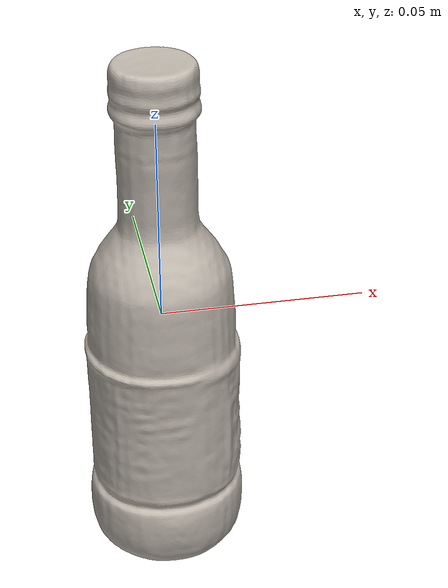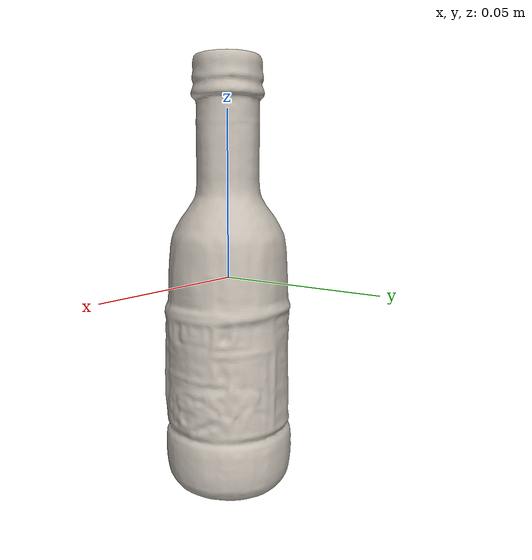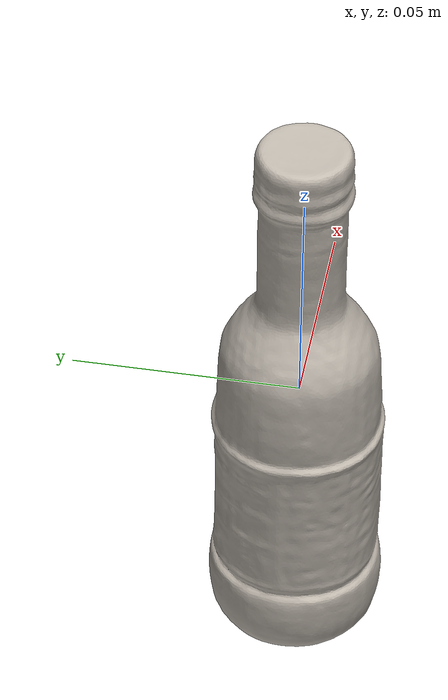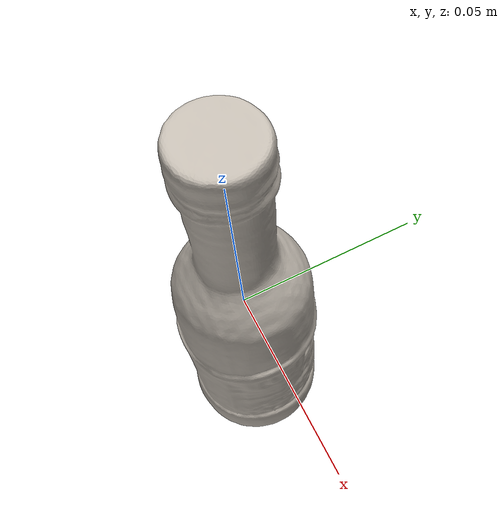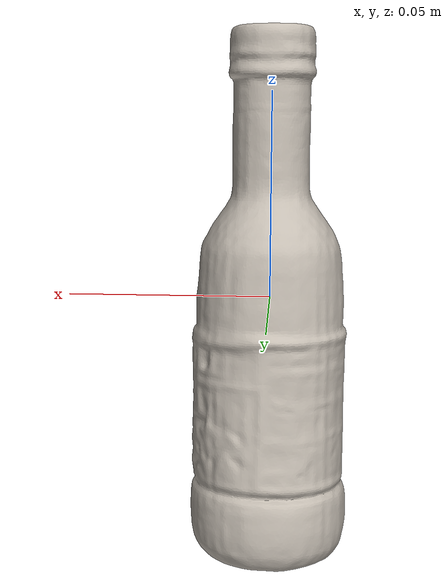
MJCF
<?xml version='1.0' encoding='utf-8'?>
<mujoco model="olive_oil_bottle_0">
  <asset>
    <texture file="ceramic.png" name="tex-olive_oil_bottle_0" type="2d" />
    <material name="olive_oil_bottle_0" reflectance="0.5" texrepeat="1 1" texture="tex-olive_oil_bottle_0" texuniform="false" />
    <mesh file="visual/model_normalized_0.obj" name="model_normalized_0_vis" scale="0.13 0.13 0.13" refquat="1.0 0.0 0.0 0.0" />
    <mesh file="collision/model_normalized_collision_13.obj" name="model_normalized_collision_13._coll" scale="0.13 0.13 0.13" refquat="1.0 0.0 0.0 0.0" />
    <mesh file="collision/model_normalized_collision_15.obj" name="model_normalized_collision_15._coll" scale="0.13 0.13 0.13" refquat="1.0 0.0 0.0 0.0" />
    <mesh file="collision/model_normalized_collision_10.obj" name="model_normalized_collision_10._coll" scale="0.13 0.13 0.13" refquat="1.0 0.0 0.0 0.0" />
    <mesh file="collision/model_normalized_collision_26.obj" name="model_normalized_collision_26._coll" scale="0.13 0.13 0.13" refquat="1.0 0.0 0.0 0.0" />
    <mesh file="collision/model_normalized_collision_25.obj" name="model_normalized_collision_25._coll" scale="0.13 0.13 0.13" refquat="1.0 0.0 0.0 0.0" />
    <mesh file="collision/model_normalized_collision_5.obj" name="model_normalized_collision_5._coll" scale="0.13 0.13 0.13" refquat="1.0 0.0 0.0 0.0" />
    <mesh file="collision/model_normalized_collision_31.obj" name="model_normalized_collision_31._coll" scale="0.13 0.13 0.13" refquat="1.0 0.0 0.0 0.0" />
    <mesh file="collision/model_normalized_collision_3.obj" name="model_normalized_collision_3._coll" scale="0.13 0.13 0.13" refquat="1.0 0.0 0.0 0.0" />
    <mesh file="collision/model_normalized_collision_14.obj" name="model_normalized_collision_14._coll" scale="0.13 0.13 0.13" refquat="1.0 0.0 0.0 0.0" />
    <mesh file="collision/model_normalized_collision_28.obj" name="model_normalized_collision_28._coll" scale="0.13 0.13 0.13" refquat="1.0 0.0 0.0 0.0" />
    <mesh file="collision/model_normalized_collision_11.obj" name="model_normalized_collision_11._coll" scale="0.13 0.13 0.13" refquat="1.0 0.0 0.0 0.0" />
    <mesh file="collision/model_normalized_collision_29.obj" name="model_normalized_collision_29._coll" scale="0.13 0.13 0.13" refquat="1.0 0.0 0.0 0.0" />
    <mesh file="collision/model_normalized_collision_24.obj" name="model_normalized_collision_24._coll" scale="0.13 0.13 0.13" refquat="1.0 0.0 0.0 0.0" />
    <mesh file="collision/model_normalized_collision_1.obj" name="model_normalized_collision_1._coll" scale="0.13 0.13 0.13" refquat="1.0 0.0 0.0 0.0" />
    <mesh file="collision/model_normalized_collision_0.obj" name="model_normalized_collision_0._coll" scale="0.13 0.13 0.13" refquat="1.0 0.0 0.0 0.0" />
    <mesh file="collision/model_normalized_collision_27.obj" name="model_normalized_collision_27._coll" scale="0.13 0.13 0.13" refquat="1.0 0.0 0.0 0.0" />
    <mesh file="collision/model_normalized_collision_9.obj" name="model_normalized_collision_9._coll" scale="0.13 0.13 0.13" refquat="1.0 0.0 0.0 0.0" />
    <mesh file="collision/model_normalized_collision_19.obj" name="model_normalized_collision_19._coll" scale="0.13 0.13 0.13" refquat="1.0 0.0 0.0 0.0" />
    <mesh file="collision/model_normalized_collision_21.obj" name="model_normalized_collision_21._coll" scale="0.13 0.13 0.13" refquat="1.0 0.0 0.0 0.0" />
    <mesh file="collision/model_normalized_collision_30.obj" name="model_normalized_collision_30._coll" scale="0.13 0.13 0.13" refquat="1.0 0.0 0.0 0.0" />
    <mesh file="collision/model_normalized_collision_20.obj" name="model_normalized_collision_20._coll" scale="0.13 0.13 0.13" refquat="1.0 0.0 0.0 0.0" />
    <mesh file="collision/model_normalized_collision_2.obj" name="model_normalized_collision_2._coll" scale="0.13 0.13 0.13" refquat="1.0 0.0 0.0 0.0" />
    <mesh file="collision/model_normalized_collision_7.obj" name="model_normalized_collision_7._coll" scale="0.13 0.13 0.13" refquat="1.0 0.0 0.0 0.0" />
    <mesh file="collision/model_normalized_collision_22.obj" name="model_normalized_collision_22._coll" scale="0.13 0.13 0.13" refquat="1.0 0.0 0.0 0.0" />
    <mesh file="collision/model_normalized_collision_16.obj" name="model_normalized_collision_16._coll" scale="0.13 0.13 0.13" refquat="1.0 0.0 0.0 0.0" />
    <mesh file="collision/model_normalized_collision_8.obj" name="model_normalized_collision_8._coll" scale="0.13 0.13 0.13" refquat="1.0 0.0 0.0 0.0" />
    <mesh file="collision/model_normalized_collision_6.obj" name="model_normalized_collision_6._coll" scale="0.13 0.13 0.13" refquat="1.0 0.0 0.0 0.0" />
    <mesh file="collision/model_normalized_collision_18.obj" name="model_normalized_collision_18._coll" scale="0.13 0.13 0.13" refquat="1.0 0.0 0.0 0.0" />
    <mesh file="collision/model_normalized_collision_17.obj" name="model_normalized_collision_17._coll" scale="0.13 0.13 0.13" refquat="1.0 0.0 0.0 0.0" />
    <mesh file="collision/model_normalized_collision_12.obj" name="model_normalized_collision_12._coll" scale="0.13 0.13 0.13" refquat="1.0 0.0 0.0 0.0" />
    <mesh file="collision/model_normalized_collision_4.obj" name="model_normalized_collision_4._coll" scale="0.13 0.13 0.13" refquat="1.0 0.0 0.0 0.0" />
    <mesh file="collision/model_normalized_collision_23.obj" name="model_normalized_collision_23._coll" scale="0.13 0.13 0.13" refquat="1.0 0.0 0.0 0.0" />
    <texture type="2d" name="8fdb166a583d_olive_oil_bottle__3_texture_kd" file="visual/8fdb166a583d_olive_oil_bottle__3_texture_kd.png" />
    <material name="Material_0" texture="8fdb166a583d_olive_oil_bottle__3_texture_kd" specular="0.5" shininess="0.5" />
  </asset>
  <default>
    <default class="region">
      <geom group="1" conaffinity="0" contype="0" rgba="0 1 0 0" />
    </default>
  </default>
  <worldbody>
    <body>
      <body name="object">
        <geom solimp="0.998 0.998 0.001" solref="0.001 1" density="100" friction="0.95 0.3 0.1" type="mesh" mesh="model_normalized_0_vis" conaffinity="0" contype="0" group="1" material="Material_0" />
        <geom solimp="0.998 0.998 0.001" solref="0.001 1" density="100" friction="0.95 0.3 0.1" type="mesh" mesh="model_normalized_collision_13._coll" group="0" rgba="0.8 0.8 0.8 0.0" />
        <geom solimp="0.998 0.998 0.001" solref="0.001 1" density="100" friction="0.95 0.3 0.1" type="mesh" mesh="model_normalized_collision_15._coll" group="0" rgba="0.8 0.8 0.8 0.0" />
        <geom solimp="0.998 0.998 0.001" solref="0.001 1" density="100" friction="0.95 0.3 0.1" type="mesh" mesh="model_normalized_collision_10._coll" group="0" rgba="0.8 0.8 0.8 0.0" />
        <geom solimp="0.998 0.998 0.001" solref="0.001 1" density="100" friction="0.95 0.3 0.1" type="mesh" mesh="model_normalized_collision_26._coll" group="0" rgba="0.8 0.8 0.8 0.0" />
        <geom solimp="0.998 0.998 0.001" solref="0.001 1" density="100" friction="0.95 0.3 0.1" type="mesh" mesh="model_normalized_collision_25._coll" group="0" rgba="0.8 0.8 0.8 0.0" />
        <geom solimp="0.998 0.998 0.001" solref="0.001 1" density="100" friction="0.95 0.3 0.1" type="mesh" mesh="model_normalized_collision_5._coll" group="0" rgba="0.8 0.8 0.8 0.0" />
        <geom solimp="0.998 0.998 0.001" solref="0.001 1" density="100" friction="0.95 0.3 0.1" type="mesh" mesh="model_normalized_collision_31._coll" group="0" rgba="0.8 0.8 0.8 0.0" />
        <geom solimp="0.998 0.998 0.001" solref="0.001 1" density="100" friction="0.95 0.3 0.1" type="mesh" mesh="model_normalized_collision_3._coll" group="0" rgba="0.8 0.8 0.8 0.0" />
        <geom solimp="0.998 0.998 0.001" solref="0.001 1" density="100" friction="0.95 0.3 0.1" type="mesh" mesh="model_normalized_collision_14._coll" group="0" rgba="0.8 0.8 0.8 0.0" />
        <geom solimp="0.998 0.998 0.001" solref="0.001 1" density="100" friction="0.95 0.3 0.1" type="mesh" mesh="model_normalized_collision_28._coll" group="0" rgba="0.8 0.8 0.8 0.0" />
        <geom solimp="0.998 0.998 0.001" solref="0.001 1" density="100" friction="0.95 0.3 0.1" type="mesh" mesh="model_normalized_collision_11._coll" group="0" rgba="0.8 0.8 0.8 0.0" />
        <geom solimp="0.998 0.998 0.001" solref="0.001 1" density="100" friction="0.95 0.3 0.1" type="mesh" mesh="model_normalized_collision_29._coll" group="0" rgba="0.8 0.8 0.8 0.0" />
        <geom solimp="0.998 0.998 0.001" solref="0.001 1" density="100" friction="0.95 0.3 0.1" type="mesh" mesh="model_normalized_collision_24._coll" group="0" rgba="0.8 0.8 0.8 0.0" />
        <geom solimp="0.998 0.998 0.001" solref="0.001 1" density="100" friction="0.95 0.3 0.1" type="mesh" mesh="model_normalized_collision_1._coll" group="0" rgba="0.8 0.8 0.8 0.0" />
        <geom solimp="0.998 0.998 0.001" solref="0.001 1" density="100" friction="0.95 0.3 0.1" type="mesh" mesh="model_normalized_collision_0._coll" group="0" rgba="0.8 0.8 0.8 0.0" />
        <geom solimp="0.998 0.998 0.001" solref="0.001 1" density="100" friction="0.95 0.3 0.1" type="mesh" mesh="model_normalized_collision_27._coll" group="0" rgba="0.8 0.8 0.8 0.0" />
        <geom solimp="0.998 0.998 0.001" solref="0.001 1" density="100" friction="0.95 0.3 0.1" type="mesh" mesh="model_normalized_collision_9._coll" group="0" rgba="0.8 0.8 0.8 0.0" />
        <geom solimp="0.998 0.998 0.001" solref="0.001 1" density="100" friction="0.95 0.3 0.1" type="mesh" mesh="model_normalized_collision_19._coll" group="0" rgba="0.8 0.8 0.8 0.0" />
        <geom solimp="0.998 0.998 0.001" solref="0.001 1" density="100" friction="0.95 0.3 0.1" type="mesh" mesh="model_normalized_collision_21._coll" group="0" rgba="0.8 0.8 0.8 0.0" />
        <geom solimp="0.998 0.998 0.001" solref="0.001 1" density="100" friction="0.95 0.3 0.1" type="mesh" mesh="model_normalized_collision_30._coll" group="0" rgba="0.8 0.8 0.8 0.0" />
        <geom solimp="0.998 0.998 0.001" solref="0.001 1" density="100" friction="0.95 0.3 0.1" type="mesh" mesh="model_normalized_collision_20._coll" group="0" rgba="0.8 0.8 0.8 0.0" />
        <geom solimp="0.998 0.998 0.001" solref="0.001 1" density="100" friction="0.95 0.3 0.1" type="mesh" mesh="model_normalized_collision_2._coll" group="0" rgba="0.8 0.8 0.8 0.0" />
        <geom solimp="0.998 0.998 0.001" solref="0.001 1" density="100" friction="0.95 0.3 0.1" type="mesh" mesh="model_normalized_collision_7._coll" group="0" rgba="0.8 0.8 0.8 0.0" />
        <geom solimp="0.998 0.998 0.001" solref="0.001 1" density="100" friction="0.95 0.3 0.1" type="mesh" mesh="model_normalized_collision_22._coll" group="0" rgba="0.8 0.8 0.8 0.0" />
        <geom solimp="0.998 0.998 0.001" solref="0.001 1" density="100" friction="0.95 0.3 0.1" type="mesh" mesh="model_normalized_collision_16._coll" group="0" rgba="0.8 0.8 0.8 0.0" />
        <geom solimp="0.998 0.998 0.001" solref="0.001 1" density="100" friction="0.95 0.3 0.1" type="mesh" mesh="model_normalized_collision_8._coll" group="0" rgba="0.8 0.8 0.8 0.0" />
        <geom solimp="0.998 0.998 0.001" solref="0.001 1" density="100" friction="0.95 0.3 0.1" type="mesh" mesh="model_normalized_collision_6._coll" group="0" rgba="0.8 0.8 0.8 0.0" />
        <geom solimp="0.998 0.998 0.001" solref="0.001 1" density="100" friction="0.95 0.3 0.1" type="mesh" mesh="model_normalized_collision_18._coll" group="0" rgba="0.8 0.8 0.8 0.0" />
        <geom solimp="0.998 0.998 0.001" solref="0.001 1" density="100" friction="0.95 0.3 0.1" type="mesh" mesh="model_normalized_collision_17._coll" group="0" rgba="0.8 0.8 0.8 0.0" />
        <geom solimp="0.998 0.998 0.001" solref="0.001 1" density="100" friction="0.95 0.3 0.1" type="mesh" mesh="model_normalized_collision_12._coll" group="0" rgba="0.8 0.8 0.8 0.0" />
        <geom solimp="0.998 0.998 0.001" solref="0.001 1" density="100" friction="0.95 0.3 0.1" type="mesh" mesh="model_normalized_collision_4._coll" group="0" rgba="0.8 0.8 0.8 0.0" />
        <geom solimp="0.998 0.998 0.001" solref="0.001 1" density="100" friction="0.95 0.3 0.1" type="mesh" mesh="model_normalized_collision_23._coll" group="0" rgba="0.8 0.8 0.8 0.0" />
        <geom class="region" name="reg_bbox" type="box" pos="0.00022439950000000125 -0.00024019450000000082 6.499999982700899e-10" size="0.0209062178 0.0204416238 0.06598484815" />
      </body>
    <site rgba="0 0 0 0" size="0.005" pos="0 0 -0.065984847" name="bottom_site" /><site rgba="0 0 0 0" size="0.005" pos="0 0 0.065984849" name="top_site" /><site rgba="0 0 0 0" size="0.005" pos="0.021130617 0.021130617 0" name="horizontal_radius_site" /></body>
  </worldbody>
</mujoco>
